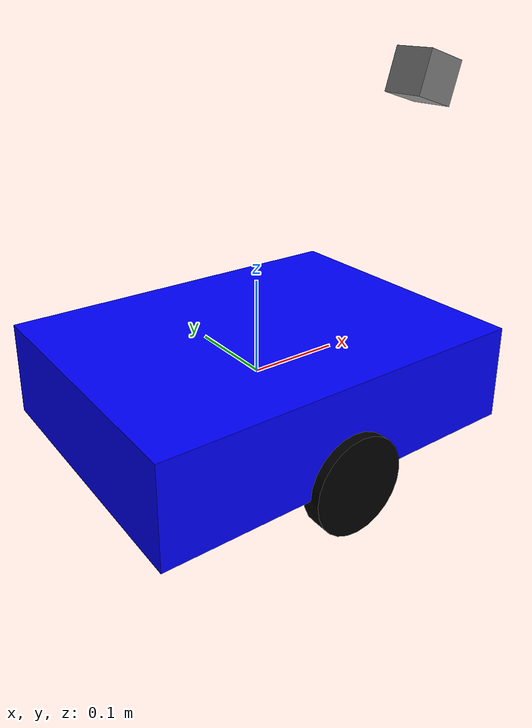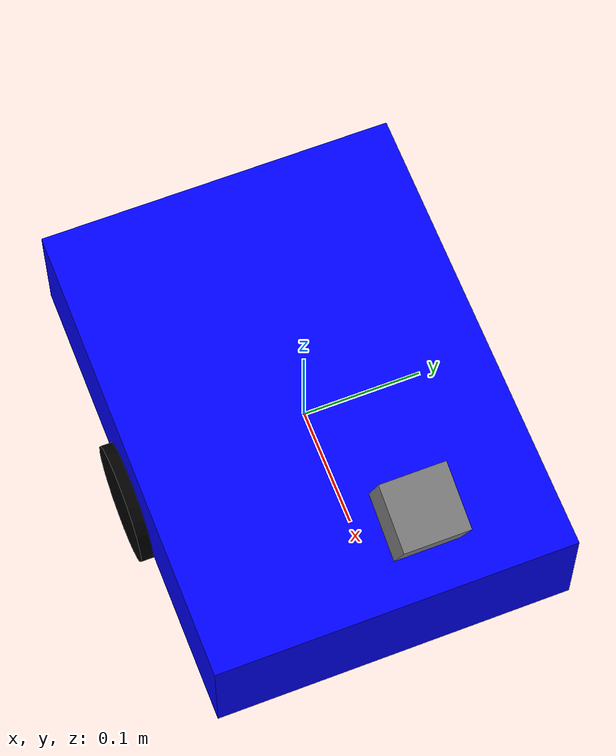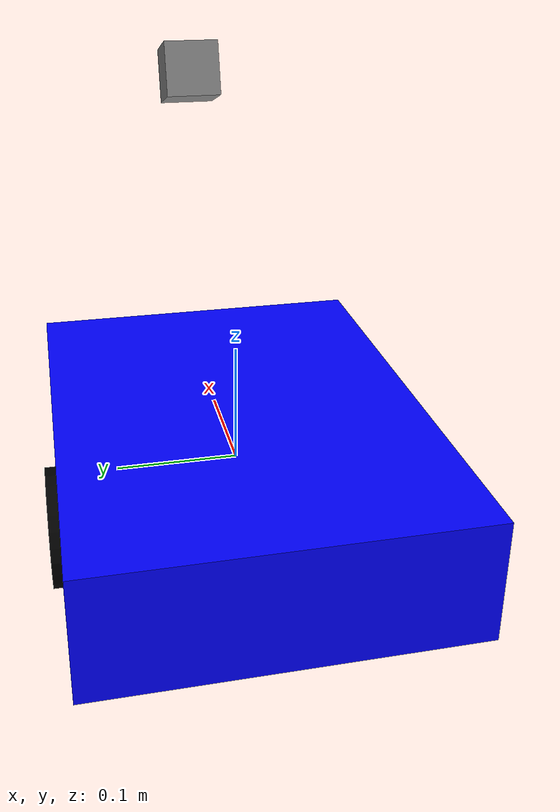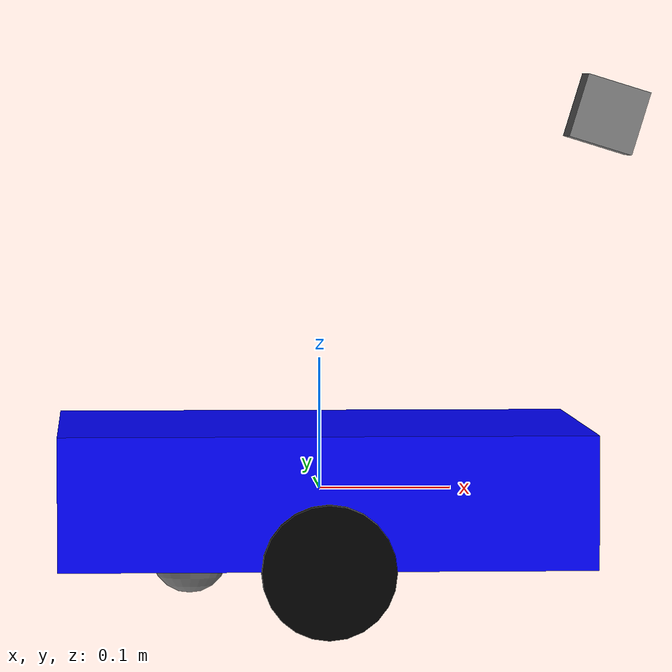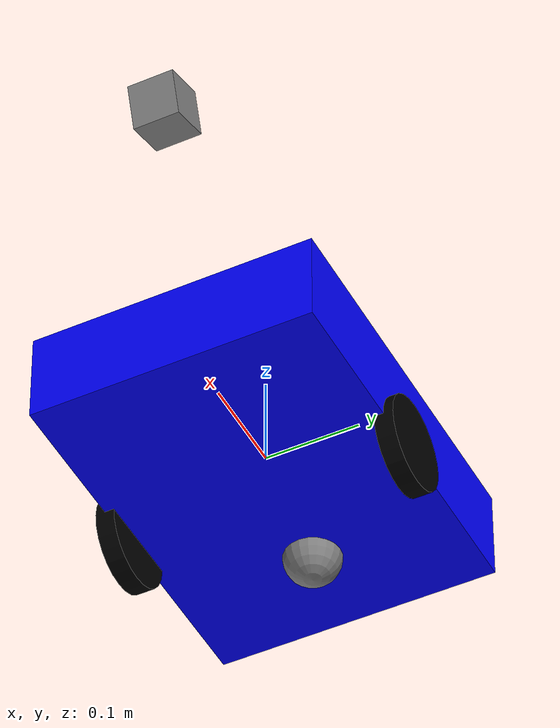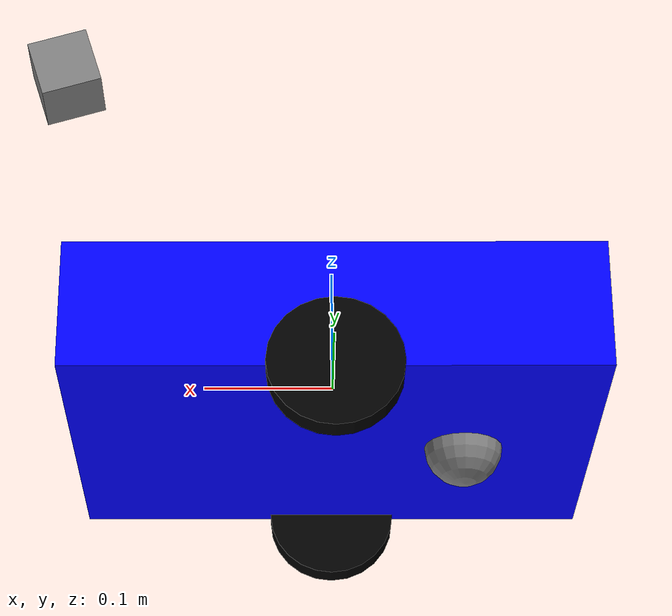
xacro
<?xml version="1.0"?>
<robot name="my_robot" xmlns:xacro="http://www.ros.org/wiki/xacro">

  <xacro:property name="wheel_radius" value="0.05"/>
  <xacro:property name="wheel_sep" value="0.30"/>
  <xacro:property name="wheel_thickness" value="0.02"/>

  <!-- Ana Gövde -->
  <link name="base_link">
    <visual>
      <geometry>
        <box size="0.4 0.3 0.1"/>
      </geometry>
      <material name="blue">
        <color rgba="0 0 1 1"/>
      </material>
    </visual>
    <collision>
      <geometry>
        <box size="0.4 0.3 0.1"/>
      </geometry>
    </collision>
    <inertial>
      <mass value="1.0"/>
      <inertia ixx="0.1" ixy="0.0" ixz="0.0"
               iyy="0.1" iyz="0.0" izz="0.1"/>
    </inertial>
  </link>

  <!-- Sol Tekerlek -->
  <link name="left_wheel_link">
    <visual>
      <origin xyz="0 0 0" rpy="${pi/2} 0 0"/>
      <geometry>
        <cylinder length="${wheel_thickness}" radius="${wheel_radius}"/>
      </geometry>
      <material name="black">
        <color rgba="0 0 0 1"/>
      </material>
    </visual>
    <collision>
      <origin xyz="0 0 0" rpy="${pi/2} 0 0"/>
      <geometry>
        <cylinder length="${wheel_thickness}" radius="${wheel_radius}"/>
      </geometry>
    </collision>
    <inertial>
      <mass value="0.1"/>
      <inertia ixx="${0.5 * 0.1 * wheel_radius * wheel_radius}"
               ixy="0.0" ixz="0.0"
               iyy="${(0.1 / 12) * (3 * wheel_radius * wheel_radius + wheel_thickness * wheel_thickness)}"
               iyz="0.0" izz="${(0.1 / 12) * (3 * wheel_radius * wheel_radius + wheel_thickness * wheel_thickness)}"/>
      <origin xyz="0 0 0" rpy="0 0 0"/>
    </inertial>
  </link>

  <!-- Sağ Tekerlek -->
  <link name="right_wheel_link">
    <visual>
      <origin xyz="0 0 0" rpy="${pi/2} 0 0"/>
      <geometry>
        <cylinder length="${wheel_thickness}" radius="${wheel_radius}"/>
      </geometry>
      <material name="black">
        <color rgba="0 0 0 1"/>
      </material>
    </visual>
    <collision>
      <origin xyz="0 0 0" rpy="${pi/2} 0 0"/>
      <geometry>
        <cylinder length="${wheel_thickness}" radius="${wheel_radius}"/>
      </geometry>
    </collision>
    <inertial>
      <mass value="0.1"/>
      <inertia ixx="${0.5 * 0.1 * wheel_radius * wheel_radius}"
               ixy="0.0" ixz="0.0"
               iyy="${(0.1 / 12) * (3 * wheel_radius * wheel_radius + wheel_thickness * wheel_thickness)}"
               iyz="0.0" izz="${(0.1 / 12) * (3 * wheel_radius * wheel_radius + wheel_thickness * wheel_thickness)}"/>
      <origin xyz="0 0 0" rpy="0 0 0"/>
    </inertial>
  </link>

  <!-- Sol ve Sağ Tekerlek Jointleri -->
  <joint name="left_wheel_joint" type="continuous">
    <parent link="base_link"/>
    <child link="left_wheel_link"/>
    <origin xyz="0 ${wheel_sep/2} -0.05" rpy="0 0 0"/>
    <axis xyz="0 1 0"/>
  </joint>

  <joint name="right_wheel_joint" type="continuous">
    <parent link="base_link"/>
    <child link="right_wheel_link"/>
    <origin xyz="0 -${wheel_sep/2} -0.05" rpy="0 0 0"/>
    <axis xyz="0 1 0"/>
  </joint>

  <!-- Caster Tekerlek -->
  <link name="caster_link">
    <visual>
      <geometry>
        <sphere radius="0.03"/>
      </geometry>
      <material name="gray">
        <color rgba="0.5 0.5 0.5 1"/>
      </material>
    </visual>
    <collision>
      <geometry>
        <sphere radius="0.03"/>
      </geometry>
    </collision>
    <inertial>
      <mass value="0.05"/>
      <inertia ixx="0.001" ixy="0.0" ixz="0.0"
               iyy="0.001" iyz="0.0" izz="0.001"/>
    </inertial>
  </link>

  <joint name="caster_joint" type="fixed">
    <parent link="base_link"/>
    <child link="caster_link"/>
    <origin xyz="-0.1 0 -0.05" rpy="0 0 0"/>
  </joint>

  <!-- Kamera -->
  <link name="camera_link">
    <visual>
      <origin xyz="0.2 0 0.1" rpy="0 0 0"/>
      <geometry>
        <box size="0.05 0.05 0.05"/>
      </geometry>
      <material name="gray">
        <color rgba="0.5 0.5 0.5 1"/>
      </material>
    </visual>
    <collision>
      <origin xyz="0.2 0 0.1" rpy="0 0 0"/>
      <geometry>
        <box size="0.05 0.05 0.05"/>
      </geometry>
    </collision>
  </link>

  <joint name="camera_joint" type="fixed">
  <parent link="base_link"/>
  <child link="camera_link"/>
  <origin xyz="0.0 0.0 0.25" rpy="0 0.3 0"/>
  </joint>

  <!-- Gazebo Diff Drive ve Kamera Sensor -->
   <!-- Gazebo Diff Drive -->
  <gazebo>
    <plugin name="diff_drive_controller" filename="libgazebo_ros_diff_drive.so">
  <left_joint>left_wheel_joint</left_joint>
  <right_joint>right_wheel_joint</right_joint>
  <wheel_separation>${wheel_sep}</wheel_separation>
  <wheel_radius>${wheel_radius}</wheel_radius>
  <command_topic>/cmd_vel</command_topic>
  <odometry_topic>/odom</odometry_topic>
  <publish_odom>true</publish_odom>
  <publish_odom_tf>true</publish_odom_tf>
  <publish_wheel_tf>true</publish_wheel_tf>
</plugin>

  </gazebo>

  <!-- Kamera sensörü -->
  <gazebo reference="camera_link">
    <sensor name="camera_sensor" type="camera">
      <update_rate>30</update_rate>
      <camera name="head_camera">
        <horizontal_fov>1.047</horizontal_fov>
        <image>
          <width>640</width>
          <height>480</height>
          <format>R8G8B8</format>
        </image>
        <clip>
          <near>0.01</near>
          <far>10.0</far>
        </clip>
      </camera>
      <always_on>true</always_on>
      <visualize>true</visualize>

      <!-- ROS eklentisi -->
      <plugin name="camera_controller" filename="libgazebo_ros_camera.so">
        <ros>
          <namespace>/</namespace>
          <remapping>image_raw:=/camera/image_raw</remapping>
        </ros>
        <camera_name>camera_sensor</camera_name>
        <frame_name>camera_link</frame_name>
      </plugin>
    </sensor>
  </gazebo>

</robot>
